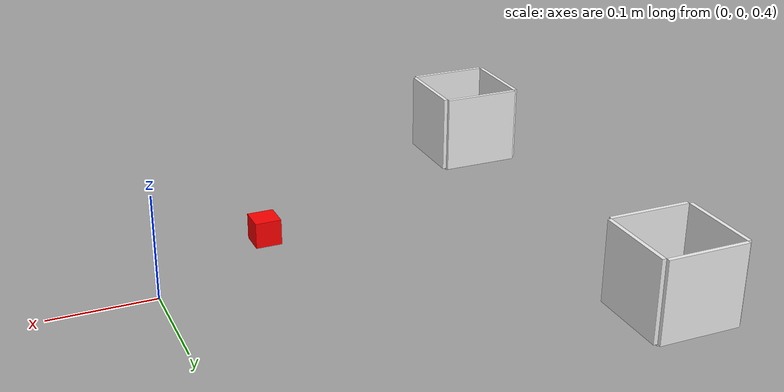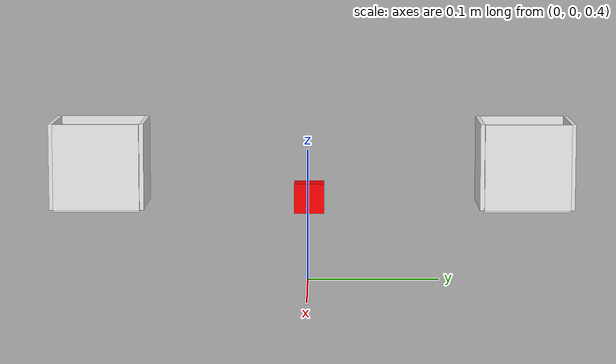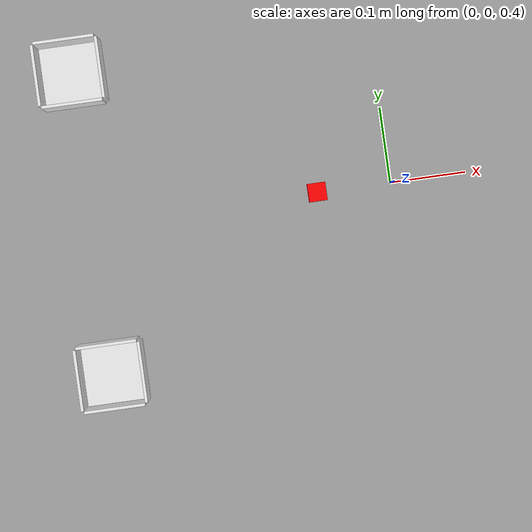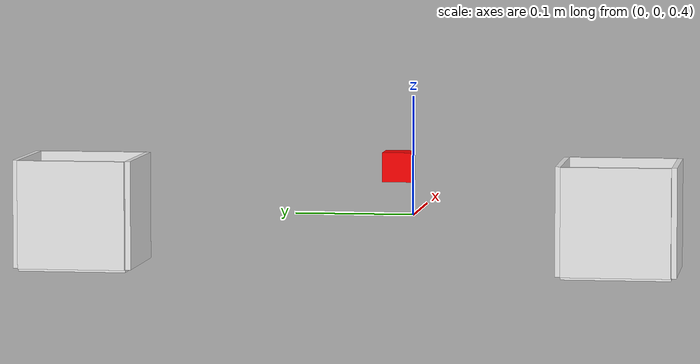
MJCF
<mujoco>
    <asset>
        <!-- Colors for visual distinction -->
        <material name="mat_box_1" rgba="0.93 0.93 0.93 1"/> <!-- Grey Box -->
        <material name="mat_box_2" rgba="0.93 0.93 0.93 1"/> <!-- Grey Box -->
        <material name="mat_cube_a" rgba="1 0 0 1"/>     <!-- Red Cube -->
        <material name="mat_cube_b" rgba="0 0 1 1"/>     <!-- Blue Cube -->
    </asset>

    <worldbody>
        <!-- CONTAINER 1 (The "Right" Box) -->
        <!-- Constructed of 5 thin walls. -->
        <!-- Center Position: x=0.3, y=-0.2 -->
        <body name="container_1" pos="-0.4 -0.2 0.4">
            <!-- Floor of the box -->
            <geom type="box" size="0.04 0.04 0.002" pos="0 0 0.002" material="mat_box_1" friction="1 0.005 0.0001"/>

            <!-- Walls (size logic: length, thickness, height) -->
            <!-- Front Wall -->
            <geom type="box" size="0.04 0.002 0.04" pos="0 -0.042 0.042" material="mat_box_1"/>
            <!-- Back Wall -->
            <geom type="box" size="0.04 0.002 0.04" pos="0 0.042 0.042" material="mat_box_1"/>
            <!-- Left Wall -->
            <geom type="box" size="0.002 0.04 0.04" pos="-0.042 0 0.042" material="mat_box_1"/>
            <!-- Right Wall -->
            <geom type="box" size="0.002 0.04 0.04" pos="0.042 0 0.042" material="mat_box_1"/>
        </body>

        <!-- CONTAINER 2 (The "Left" Box) -->
        <!-- Center Position: x=0.0, y=0.2 -->
        <body name="container_2" pos="-0.4 0.2 0.4">
            <!-- Floor -->
            <geom type="box" size="0.04 0.04 0.002" pos="0 0 0.002" material="mat_box_2" friction="1 0.005 0.0001"/>
            <!-- Walls -->
            <geom type="box" size="0.04 0.002 0.04" pos="0 -0.042 0.042" material="mat_box_2"/>
            <geom type="box" size="0.04 0.002 0.04" pos="0 0.042 0.042" material="mat_box_2"/>
            <geom type="box" size="0.002 0.04 0.04" pos="-0.042 0 0.042" material="mat_box_2"/>
            <geom type="box" size="0.002 0.04 0.04" pos="0.042 0 0.042" material="mat_box_2"/>
        </body>

        <!-- CUBE A (Red) -->
        <!-- Needs a freejoint to be movable -->
<!--            &lt;!&ndash; MODIFIED GEOM:-->
<!--                 condim="4": Allows torsional friction-->
<!--                 friction="1.5 ...": High friction-->
<!--                 solimp/solref: Matches gripper softness &ndash;&gt;-->
        <body name="cube_a" pos="-0.1 0 0.45">
            <joint name="cube_a_joint" type="free" frictionloss="0.01"/>
            <inertial pos="0 0 0" mass="0.05" diaginertia="0.002 0.002 0.002"/>
            <geom condim="4" solimp="2 1 0.01" solref="0.01 1" friction="1 0.005 0.0001" pos="0 0 0" size="0.012 0.012 0.012" type="box" name="cube_a_geom" material="mat_cube_a"/>
            <site name="cube_a" pos="0 0 0" size="0.012 0.012 0.012" rgba="0 1 0 1" type="sphere"/>
		</body>

        <!-- CUBE B (Blue) -->

        <body name="cube_b" pos="-0.1 0 0.45">
            <joint name="cube_b_joint" type="free" frictionloss="0.01"/>
            <inertial pos="0 0 0" mass="0.05" diaginertia="0.002 0.002 0.002"/>
            <geom condim="4" solimp="2 1 0.01" solref="0.01 1" friction="1 0.005 0.0001" pos="0 0 0" size="0.012 0.012 0.012" type="box" name="cube_b_geom" material="mat_cube_b"/>
            <site name="cube_b" pos="0 0 0" size="0.012 0.012 0.012" rgba="0 1 0 1" type="sphere"/>
		</body>

    </worldbody>
</mujoco>
